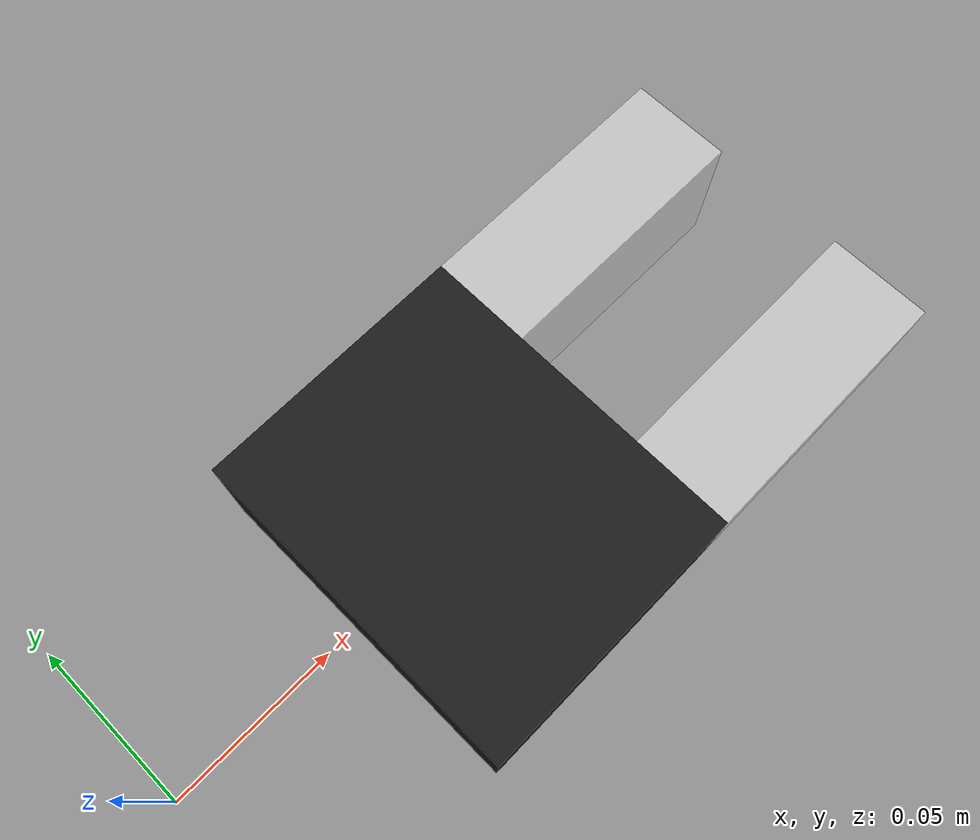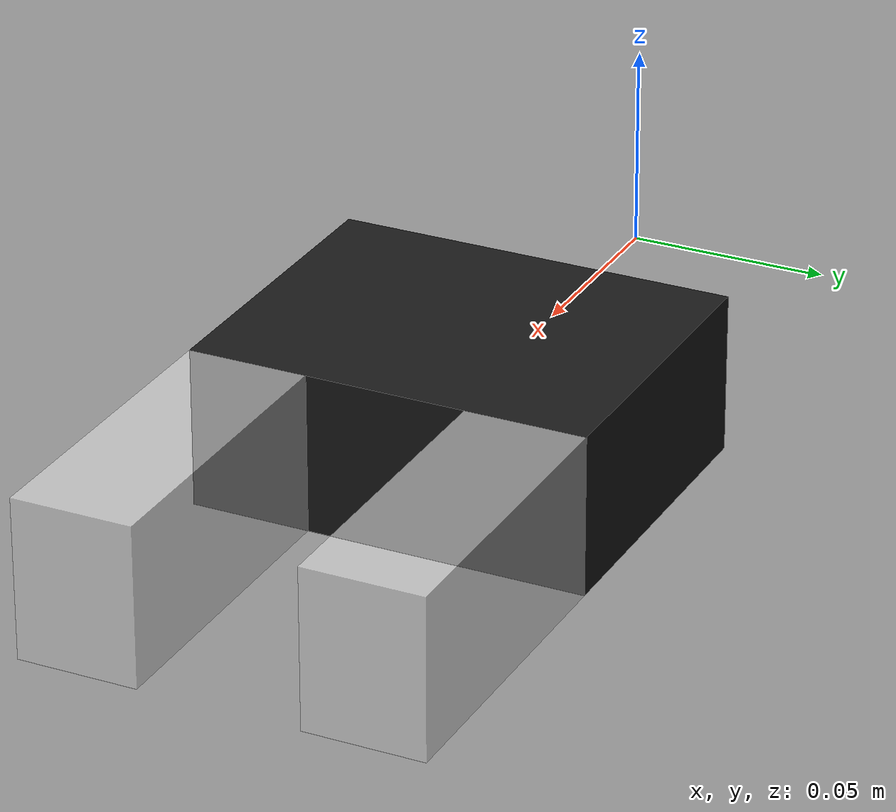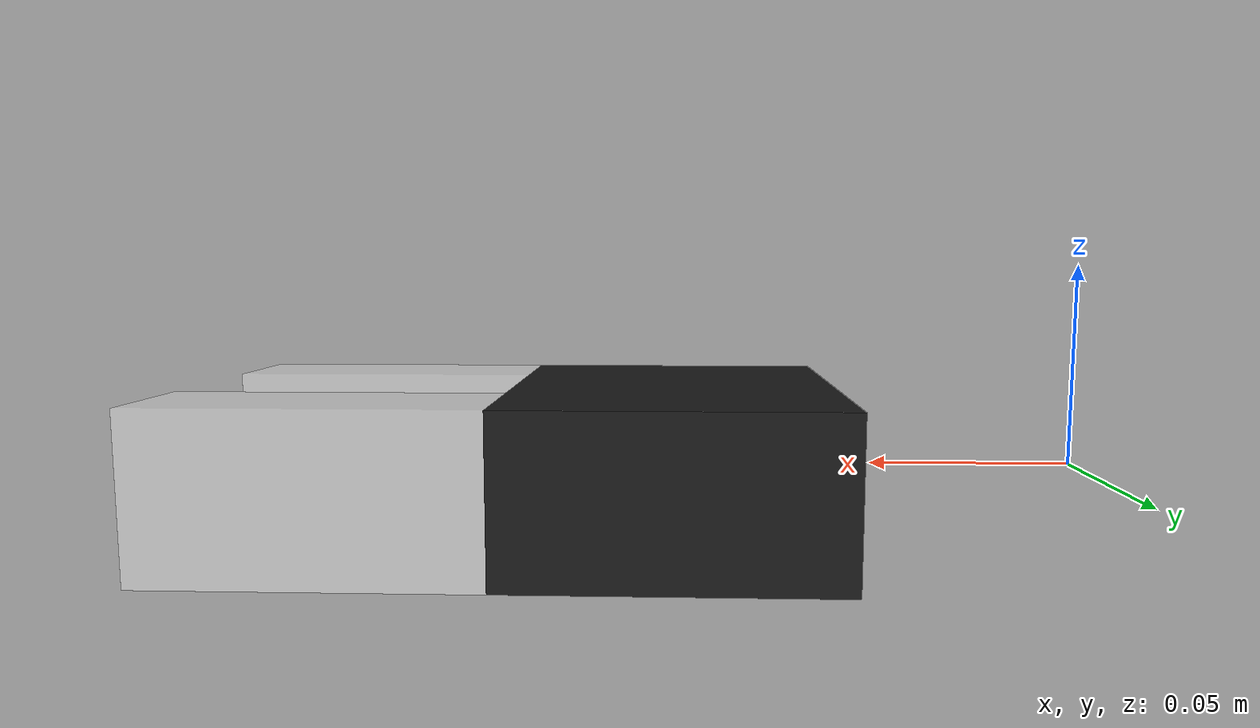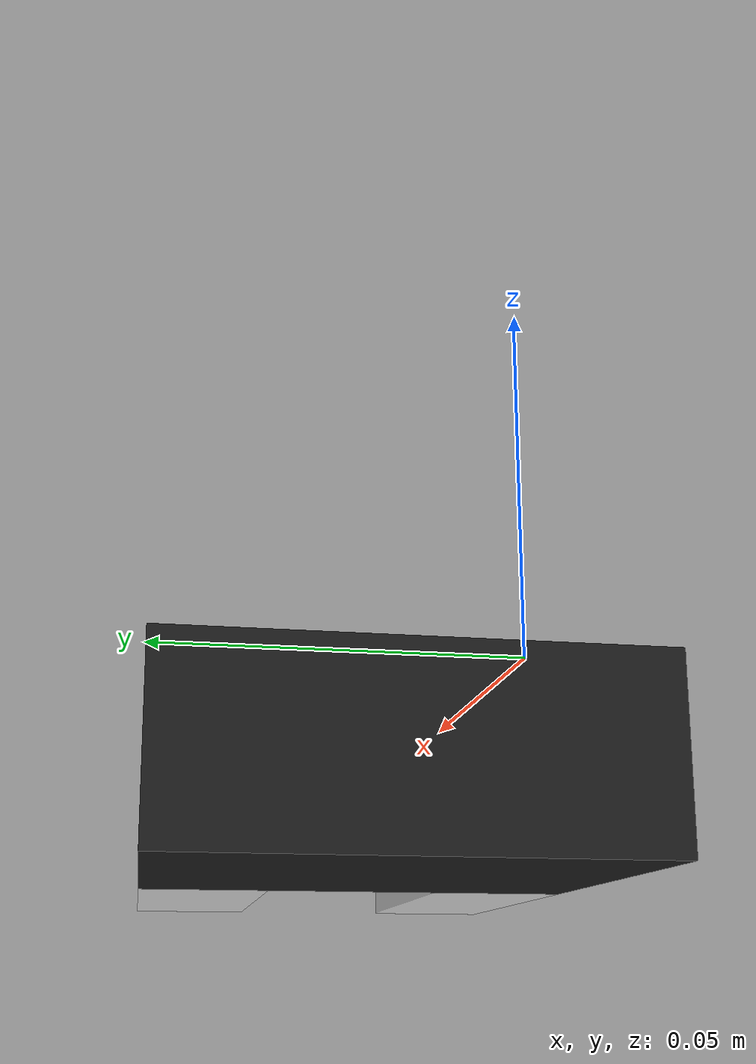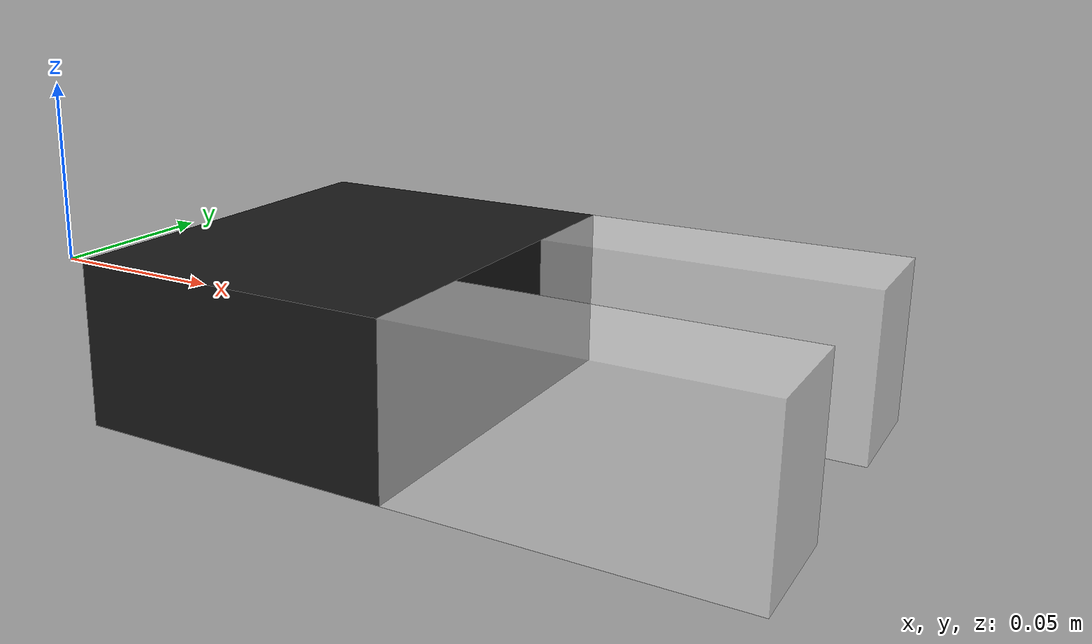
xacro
<?xml version="1.0"?>
<robot xmlns:xacro="http://www.ros.org/wiki/xacro" name="gluon">

    <!-- Gripper geometry/hardware macros (now split: geometry is
          separate from ros2_control so it can be used in both
          sim and real mode). -->
    <xacro:include filename="$(find gripper)/urdf/gripper_macro.urdf.xacro" />

    <xacro:gripper_geometry parent_link="world" mount_xyz="0.1 0 0" />

    <xacro:gripper_ros2_control_real usb_port="/dev/ttyACM0"/>

    <link name="world"/>

</robot>

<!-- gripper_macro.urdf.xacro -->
<robot xmlns:xacro="http://www.ros.org/wiki/xacro">

  <!-- `gripper` is kept as a convenience macro for real-robot-only
       usage; it just calls geometry + real hardware together.
       ============================================================ -->
  <xacro:macro name="gripper_geometry" params="parent_link mount_xyz:='0 0 0' mount_rpy:='0 0 0'">

    <!-- ==================== Geometry properties ==================== -->
    <xacro:property name="base_size_x" value="0.08" />
    <xacro:property name="base_size_y" value="0.10" />
    <xacro:property name="base_size_z" value="0.04" />
    <xacro:property name="base_mass" value="0.5" />

    <xacro:property name="finger_size_x" value="0.08" />
    <xacro:property name="finger_size_y" value="0.03" />
    <xacro:property name="finger_size_z" value="0.04" />
    <xacro:property name="finger_mass" value="0.05" />

    <xacro:property name="finger_x_offset" value="0.04" />
    <xacro:property name="finger_y_offset" value="0.035" />
    <xacro:property name="finger_z_offset" value="0.0" />

    <xacro:property name="joint_effort" value="10.0" />
    <xacro:property name="joint_velocity" value="1.0" />

    <xacro:property name="ee_offset_x" value="${finger_x_offset + finger_x_offset + finger_size_x / 2}" />
    <xacro:property name="ee_offset_y" value="0.0" />
    <xacro:property name="ee_offset_z" value="0.0" />

    <!-- ==================== Materials ====================
         Guarded with a property check since a top-level file that
         includes multiple macros could define these more than once. -->
    <material name="black">
      <color rgba="0.1 0.1 0.1 1.0" />
    </material>
    <material name="translucent_white">
      <color rgba="0.9 0.9 0.9 0.6" />
    </material>

    <!-- ==================== Fixed joint to the arm ==================== -->
    <joint name="gripper_mount_joint" type="fixed">
      <parent link="${parent_link}" />
      <child link="gripper_base" />
      <origin xyz="${mount_xyz}" rpy="${mount_rpy}" />
    </joint>

    <!-- ==================== Gripper Base ==================== -->
    <link name="gripper_base">
      <inertial>
        <origin xyz="0 0 0" rpy="0 0 0" />
        <mass value="${base_mass}" />
        <inertia ixx="0.001" ixy="0.0" ixz="0.0" iyy="0.001" iyz="0.0" izz="0.001" />
      </inertial>
      <visual>
        <origin xyz="0 0 0" rpy="0 0 0" />
        <geometry>
          <box size="${base_size_x} ${base_size_y} ${base_size_z}" />
        </geometry>
        <material name="black" />
      </visual>
      <collision>
        <origin xyz="0 0 0" rpy="0 0 0" />
        <geometry>
          <box size="${base_size_x} ${base_size_y} ${base_size_z}" />
        </geometry>
      </collision>
    </link>

    <joint name="end_effector_joint" type="fixed">
      <parent link="gripper_base" />
      <child link="end_effector_link" />
      <origin xyz="${ee_offset_x} ${ee_offset_y} ${ee_offset_z}" rpy="0 0 0" />
    </joint>

    <link name="end_effector_link">
      <inertial>
        <origin xyz="0 0 0" rpy="0 0 0" />
        <mass value="0.0001" />
        <inertia ixx="1e-9" ixy="0.0" ixz="0.0" iyy="1e-9" iyz="0.0" izz="1e-9" />
      </inertial>
    </link>

    <!-- ==================== Finger sub-macro ==================== -->
    <xacro:macro name="finger" params="side y_sign lower upper">
      <joint name="${side}_finger_joint" type="revolute">
        <parent link="gripper_base" />
        <child link="${side}_finger" />
        <origin xyz="${finger_x_offset} ${y_sign * finger_y_offset} ${finger_z_offset}" rpy="0 0 0" />
        <axis xyz="0 0 1" />
        <limit lower="${lower}" upper="${upper}" effort="${joint_effort}" velocity="${joint_velocity}" />
      </joint>

      <link name="${side}_finger">
        <inertial>
          <origin xyz="${finger_x_offset} ${-y_sign * 0.015} 0" rpy="0 0 0" />
          <mass value="${finger_mass}" />
          <inertia ixx="0.0001" ixy="0.0" ixz="0.0" iyy="0.0001" iyz="0.0" izz="0.0001" />
        </inertial>
        <visual>
          <origin xyz="${finger_x_offset} 0 0" rpy="0 0 0" />
          <geometry>
            <box size="${finger_size_x} ${finger_size_y} ${finger_size_z}" />
          </geometry>
          <material name="translucent_white" />
        </visual>
        <collision>
          <origin xyz="${finger_x_offset} 0 0" rpy="0 0 0" />
          <geometry>
            <box size="${finger_size_x} ${finger_size_y} ${finger_size_z}" />
          </geometry>
        </collision>
      </link>
    </xacro:macro>

    <xacro:finger side="left" y_sign="1" lower="-0.2" upper="0.8" />
    <xacro:finger side="right" y_sign="-1" lower="-0.8" upper="0.2" />

  </xacro:macro>

  <xacro:macro name="gripper_ros2_control_real" params="usb_port:='/dev/ttyACM0' baud_rate:='1000000' left_motor_id:=1 right_motor_id:=2">

    <ros2_control name="gripper_system" type="system">
      <hardware>
        <plugin>dynamixel_hardware_interface/DynamixelHardware</plugin>
        <param name="port_name">${usb_port}</param>
        <param name="baud_rate">${baud_rate}</param>
        <param name="dynamixel_model_folder">/param/dxl_model</param>
        <param name="number_of_joints">2</param>
        <param name="number_of_transmissions">2</param>
      </hardware>

      <joint name="left_finger_joint">
        <command_interface name="position" />
        <state_interface name="position" />
        <state_interface name="velocity" />
        <state_interface name="effort" />
      </joint>

      <joint name="right_finger_joint">
        <command_interface name="position" />
        <state_interface name="position" />
        <state_interface name="velocity" />
        <state_interface name="effort" />
      </joint>

      <gpio name="dxl1">
        <param name="type">dxl</param>
        <param name="ID">${left_motor_id}</param>
        <command_interface name="Goal Position" />
        <state_interface name="Present Position" />
        <state_interface name="Present Velocity" />
        <state_interface name="Present Current" />
        <param name="Position P Gain">800</param>
        <param name="Position I Gain">0</param>
        <param name="Position D Gain">0</param>
        <param name="Drive Mode">0</param>
      </gpio>

      <gpio name="dxl2">
        <param name="type">dxl</param>
        <param name="ID">${right_motor_id}</param>
        <command_interface name="Goal Position" />
        <state_interface name="Present Position" />
        <state_interface name="Present Velocity" />
        <state_interface name="Present Current" />
        <param name="Position P Gain">800</param>
        <param name="Position I Gain">0</param>
        <param name="Position D Gain">0</param>
        <param name="Drive Mode">0</param>
      </gpio>
    </ros2_control>

  </xacro:macro>

  <xacro:macro name="gripper_ros2_control_sim" params="name:='FakeGripperSystem'">

    <ros2_control name="${name}" type="system">
      <hardware>
        <plugin>mock_components/GenericSystem</plugin>
        <param name="mock_sensor_commands">false</param>
        <param name="state_following_offset">0.0</param>
      </hardware>

      <joint name="left_finger_joint">
        <command_interface name="position" />
        <state_interface name="position" />
        <state_interface name="velocity" />
        <state_interface name="effort" />
      </joint>

      <joint name="right_finger_joint">
        <command_interface name="position" />
        <state_interface name="position" />
        <state_interface name="velocity" />
        <state_interface name="effort" />
      </joint>
    </ros2_control>

  </xacro:macro>

  <xacro:macro name="gripper" params="parent_link mount_xyz:='0 0 0' mount_rpy:='0 0 0' usb_port:='/dev/ttyACM0' baud_rate:='1000000' left_motor_id:=1 right_motor_id:=2">
    <xacro:gripper_geometry parent_link="${parent_link}" mount_xyz="${mount_xyz}" mount_rpy="${mount_rpy}" />
    <xacro:gripper_ros2_control_real usb_port="${usb_port}" baud_rate="${baud_rate}" left_motor_id="${left_motor_id}" right_motor_id="${right_motor_id}" />
  </xacro:macro>

</robot>
